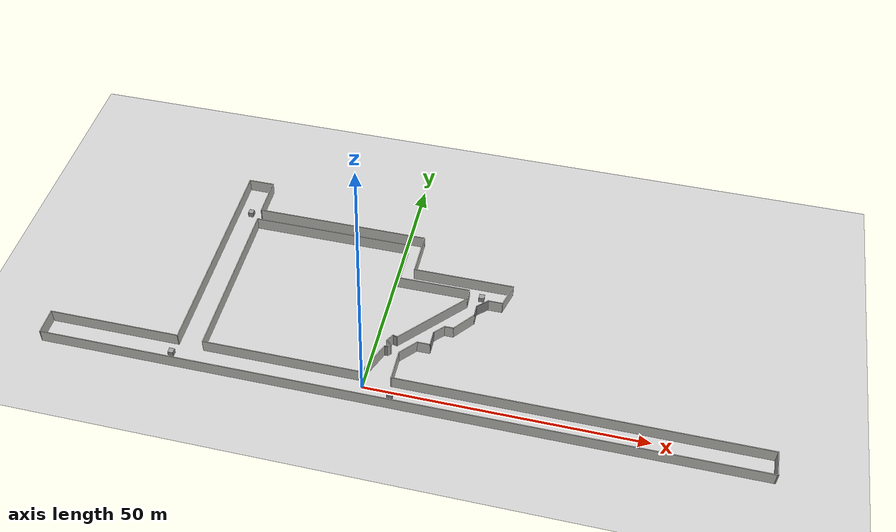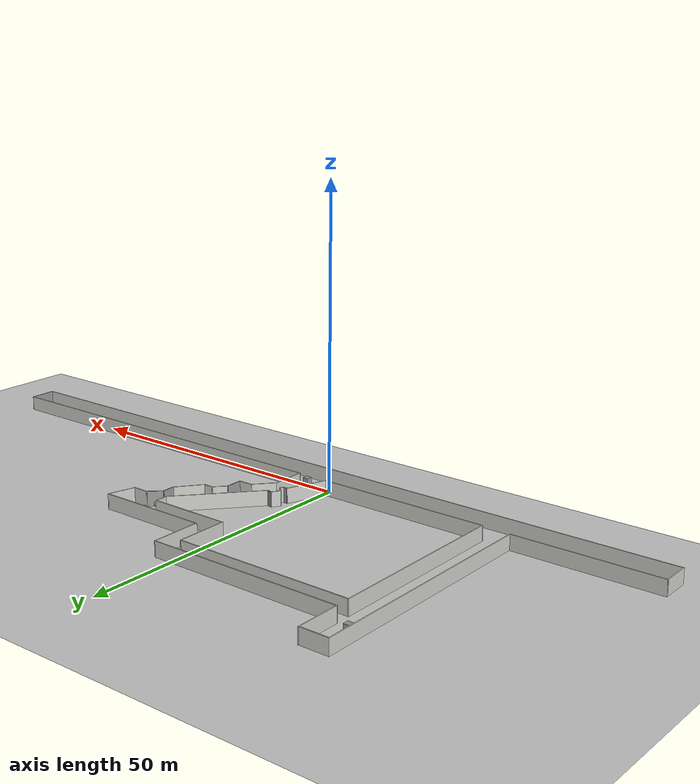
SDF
<sdf version="1.6">
 <world name="racecar_tunnel">
  <light name="sun" type="directional">
   <pose>0 0 10 0 -0 0</pose>
   <diffuse>0.8 0.8 0.8 1</diffuse>
   <specular>0.1 0.1 0.1 1</specular>
   <attenuation>
    <range>1000</range>
    <constant>0.9</constant>
    <linear>0.01</linear>
    <quadratic>0.001</quadratic>
   </attenuation>
   <direction>-0.5 0.5 -1</direction>
  </light>
  <model name="ground_plane">
   <static>1</static>
   <link name="link">
    <collision name="collision">
     <geometry><plane><normal>0 0 1</normal><size>150 150</size></plane></geometry>
     <surface><friction><ode><mu>100</mu><mu2>50</mu2></ode></friction></surface>
    </collision>
    <visual name="visual">
     <cast_shadows>0</cast_shadows>
     <geometry><plane><normal>0 0 1</normal><size>150 150</size></plane></geometry>
     <material>
      <script><uri>file://media/materials/scripts/gazebo.material</uri><name>Gazebo/Grey</name></script>
     </material>
    </visual>
   </link>
  </model>
  <model name="MIT_Tunnel">
   <pose>6 20 0 0 -0 0</pose>
   <link name="Wall_10">
    <collision name="Wall_10_Collision">
     <geometry><box><size>32.6917 0.15 2.5</size></box></geometry>
     <pose>0 0 1.25 0 -0 0</pose>
    </collision>
    <visual name="Wall_10_Visual">
     <pose>0 0 1.25 0 -0 0</pose>
     <geometry><box><size>32.6917 0.15 2.5</size></box></geometry>
     <material>
      <script><uri>file://media/materials/scripts/gazebo.material</uri><name>Gazebo/CeilingTiled</name></script>
      <ambient>1 1 1 1</ambient>
     </material>
    </visual>
    <pose>-19.1952 15.5558 0 0 0 -0.001042</pose>
   </link>
   <link name="Wall_12">
    <collision name="Wall_12_Collision">
     <geometry><box><size>8.5 0.15 2.5</size></box></geometry>
     <pose>0 0 1.25 0 -0 0</pose>
    </collision>
    <visual name="Wall_12_Visual">
     <pose>0 0 1.25 0 -0 0</pose>
     <geometry><box><size>8.5 0.15 2.5</size></box></geometry>
     <material>
      <script><uri>file://media/materials/scripts/gazebo.material</uri><name>Gazebo/CeilingTiled</name></script>
      <ambient>1 1 1 1</ambient>
     </material>
    </visual>
    <pose>-2.92483 11.3639 0 0 0 -1.5708</pose>
   </link>
   <link name="Wall_15">
    <collision name="Wall_15_Collision">
     <geometry><box><size>18.75 0.15 2.5</size></box></geometry>
     <pose>0 0 1.25 0 -0 0</pose>
    </collision>
    <visual name="Wall_15_Visual">
     <pose>0 0 1.25 0 -0 0</pose>
     <geometry><box><size>18.75 0.15 2.5</size></box></geometry>
     <material>
      <script><uri>file://media/materials/scripts/gazebo.material</uri><name>Gazebo/CeilingTiled</name></script>
      <ambient>1 1 1 1</ambient>
     </material>
    </visual>
    <pose>6.37517 7.18889 0 0 -0 0</pose>
   </link>
   <link name="Wall_17">
    <collision name="Wall_17_Collision">
     <geometry><box><size>4.75 0.15 2.5</size></box></geometry>
     <pose>0 0 1.25 0 -0 0</pose>
    </collision>
    <visual name="Wall_17_Visual">
     <pose>0 0 1.25 0 -0 0</pose>
     <geometry><box><size>4.75 0.15 2.5</size></box></geometry>
     <material>
      <script><uri>file://media/materials/scripts/gazebo.material</uri><name>Gazebo/CeilingTiled</name></script>
      <ambient>1 1 1 1</ambient>
     </material>
    </visual>
    <pose>15.0799 4.96726 0 0 0 -1.8326</pose>
   </link>
   <link name="Wall_18">
    <collision name="Wall_18_Collision">
     <geometry><box><size>2.75 0.15 2.5</size></box></geometry>
     <pose>0 0 1.25 0 -0 0</pose>
    </collision>
    <visual name="Wall_18_Visual">
     <pose>0 0 1.25 0 -0 0</pose>
     <geometry><box><size>2.75 0.15 2.5</size></box></geometry>
     <material>
      <script><uri>file://media/materials/scripts/gazebo.material</uri><name>Gazebo/CeilingTiled</name></script>
      <ambient>1 1 1 1</ambient>
     </material>
    </visual>
    <pose>13.1846 2.74563 0 0 -0 3.14159</pose>
   </link>
   <link name="Wall_19">
    <collision name="Wall_19_Collision">
     <geometry><box><size>2.75 0.15 2.5</size></box></geometry>
     <pose>0 0 1.25 0 -0 0</pose>
    </collision>
    <visual name="Wall_19_Visual">
     <pose>0 0 1.25 0 -0 0</pose>
     <geometry><box><size>2.75 0.15 2.5</size></box></geometry>
     <material>
      <script><uri>file://media/materials/scripts/gazebo.material</uri><name>Gazebo/Grey</name></script>
      <ambient>1 1 1 1</ambient>
     </material>
    </visual>
    <pose>10.9654 1.82639 0 0 0 -2.35619</pose>
   </link>
   <link name="Wall_2">
    <collision name="Wall_2_Collision">
     <geometry><box><size>24.25 0.15 2.5</size></box></geometry>
     <pose>0 0 1.25 0 -0 0</pose>
    </collision>
    <visual name="Wall_2_Visual">
     <pose>0 0 1.25 0 -0 0</pose>
     <geometry><box><size>24.25 0.15 2.5</size></box></geometry>
     <material>
      <script><uri>file://media/materials/scripts/gazebo.material</uri><name>Gazebo/CeilingTiled</name></script>
      <ambient>1 1 1 1</ambient>
     </material>
    </visual>
    <pose>-52.25 -18.2689 0 0 -0 0</pose>
   </link>
   <link name="Wall_20">
    <collision name="Wall_20_Collision">
     <geometry><box><size>2.25 0.15 2.5</size></box></geometry>
     <pose>0 0 1.25 0 -0 0</pose>
    </collision>
    <visual name="Wall_20_Visual">
     <pose>0 0 1.25 0 -0 0</pose>
     <geometry><box><size>2.25 0.15 2.5</size></box></geometry>
     <material>
      <script><uri>file://media/materials/scripts/gazebo.material</uri><name>Gazebo/Grey</name></script>
      <ambient>1 1 1 1</ambient>
     </material>
    </visual>
    <pose>10.0461 -0.142849 0 0 0 -1.5708</pose>
   </link>
   <link name="Wall_22">
    <collision name="Wall_22_Collision">
     <geometry><box><size>5.08891 0.15 2.5</size></box></geometry>
     <pose>0 0 1.25 0 -0 0</pose>
    </collision>
    <visual name="Wall_22_Visual">
     <pose>0 0 1.25 0 -0 0</pose>
     <geometry><box><size>5.08891 0.15 2.5</size></box></geometry>
     <material>
      <script><uri>file://media/materials/scripts/gazebo.material</uri><name>Gazebo/CeilingTiled</name></script>
      <ambient>1 1 1 1</ambient>
     </material>
    </visual>
    <pose>8.53852 -3.14869 0 0 0 -2.22749</pose>
   </link>
   <link name="Wall_23">
    <collision name="Wall_23_Collision">
     <geometry><box><size>1.75 0.15 2.5</size></box></geometry>
     <pose>0 0 1.25 0 -0 0</pose>
    </collision>
    <visual name="Wall_23_Visual">
     <pose>0 0 1.25 0 -0 0</pose>
     <geometry><box><size>1.75 0.15 2.5</size></box></geometry>
     <material>
      <script><uri>file://media/materials/scripts/gazebo.material</uri><name>Gazebo/CeilingTiled</name></script>
      <ambient>1 1 1 1</ambient>
     </material>
    </visual>
    <pose>6.23091 -5.10454 0 0 -0 3.14159</pose>
   </link>
   <link name="Wall_24">
    <collision name="Wall_24_Collision">
     <geometry><box><size>2.59216 0.15 2.5</size></box></geometry>
     <pose>0 0 1.25 0 -0 0</pose>
    </collision>
    <visual name="Wall_24_Visual">
     <pose>0 0 1.25 0 -0 0</pose>
     <geometry><box><size>2.59216 0.15 2.5</size></box></geometry>
     <material>
      <script><uri>file://media/materials/scripts/gazebo.material</uri><name>Gazebo/CeilingTiled</name></script>
      <ambient>1 1 1 1</ambient>
     </material>
    </visual>
    <pose>4.6163 -6.01417 0 0 0 -2.30114</pose>
   </link>
   <link name="Wall_26">
    <collision name="Wall_26_Collision">
     <geometry><box><size>3 0.15 2.5</size></box></geometry>
     <pose>0 0 1.25 0 -0 0</pose>
    </collision>
    <visual name="Wall_26_Visual">
     <pose>0 0 1.25 0 -0 0</pose>
     <geometry><box><size>3 0.15 2.5</size></box></geometry>
     <material>
      <script><uri>file://media/materials/scripts/gazebo.material</uri><name>Gazebo/Grey</name></script>
      <ambient>1 1 1 1</ambient>
     </material>
    </visual>
    <pose>3.80168 -8.34882 0 0 0 -1.5708</pose>
   </link>
   <link name="Wall_27">
    <collision name="Wall_27_Collision">
     <geometry><box><size>2.5 0.15 2.5</size></box></geometry>
     <pose>0 0 1.25 0 -0 0</pose>
    </collision>
    <visual name="Wall_27_Visual">
     <pose>0 0 1.25 0 -0 0</pose>
     <geometry><box><size>2.5 0.15 2.5</size></box></geometry>
     <material>
      <script><uri>file://media/materials/scripts/gazebo.material</uri><name>Gazebo/CeilingTiled</name></script>
      <ambient>1 1 1 1</ambient>
     </material>
    </visual>
    <pose>2.62668 -9.77382 0 0 -0 3.14159</pose>
   </link>
   <link name="Wall_28">
    <collision name="Wall_28_Collision">
     <geometry><box><size>4.15096 0.15 2.5</size></box></geometry>
     <pose>0 0 1.25 0 -0 0</pose>
    </collision>
    <visual name="Wall_28_Visual">
     <pose>0 0 1.25 0 -0 0</pose>
     <geometry><box><size>4.15096 0.15 2.5</size></box></geometry>
     <material>
      <script><uri>file://media/materials/scripts/gazebo.material</uri><name>Gazebo/CeilingTiled</name></script>
      <ambient>1 1 1 1</ambient>
     </material>
    </visual>
    <pose>0.152007 -11.2946 0 0 0 -2.27796</pose>
   </link>
   <link name="Wall_29">
    <collision name="Wall_29_Collision">
     <geometry><box><size>5.87777 0.15 2.5</size></box></geometry>
     <pose>0 0 1.25 0 -0 0</pose>
    </collision>
    <visual name="Wall_29_Visual">
     <pose>0 0 1.25 0 -0 0</pose>
     <geometry><box><size>5.87777 0.15 2.5</size></box></geometry>
     <material>
      <script><uri>file://media/materials/scripts/gazebo.material</uri><name>Gazebo/CeilingTiled</name></script>
      <ambient>1 1 1 1</ambient>
     </material>
    </visual>
    <pose>-1.14312 -15.679 0 0 0 -1.56921</pose>
   </link>
   <link name="Wall_30">
    <collision name="Wall_30_Collision">
     <geometry><box><size>65.5 0.15 2.5</size></box></geometry>
     <pose>0 0 1.25 0 -0 0</pose>
    </collision>
    <visual name="Wall_30_Visual">
     <pose>0 0 1.25 0 -0 0</pose>
     <geometry><box><size>65.5 0.15 2.5</size></box></geometry>
     <material>
      <script><uri>file://media/materials/scripts/gazebo.material</uri><name>Gazebo/CeilingTiled</name></script>
      <ambient>1 1 1 1</ambient>
     </material>
    </visual>
    <pose>31.5103 -18.5427 0 0 -0 0</pose>
   </link>
   <link name="Wall_32">
    <collision name="Wall_32_Collision">
     <geometry><box><size>4.75 0.15 2.5</size></box></geometry>
     <pose>0 0 1.25 0 -0 0</pose>
    </collision>
    <visual name="Wall_32_Visual">
     <pose>0 0 1.25 0 -0 0</pose>
     <geometry><box><size>4.75 0.15 2.5</size></box></geometry>
     <material>
      <script><uri>file://media/materials/scripts/gazebo.material</uri><name>Gazebo/Grey</name></script>
      <ambient>1 1 1 1</ambient>
     </material>
    </visual>
    <pose>64.1853 -20.8427 0 0 0 -1.5708</pose>
   </link>
   <link name="Wall_34">
    <collision name="Wall_34_Collision">
     <geometry><box><size>5 0.15 2.5</size></box></geometry>
     <pose>0 0 1.25 0 -0 0</pose>
    </collision>
    <visual name="Wall_34_Visual">
     <pose>0 0 1.25 0 -0 0</pose>
     <geometry><box><size>5 0.15 2.5</size></box></geometry>
     <material>
      <script><uri>file://media/materials/scripts/gazebo.material</uri><name>Gazebo/CeilingTiled</name></script>
      <ambient>1 1 1 1</ambient>
     </material>
    </visual>
    <pose>-64.3 -20.6939 0 0 0 -1.5708</pose>
   </link>
   <link name="Wall_35">
    <collision name="Wall_35_Collision">
     <geometry><box><size>128.75 0.15 2.5</size></box></geometry>
     <pose>0 0 1.25 0 -0 0</pose>
    </collision>
    <visual name="Wall_35_Visual">
     <pose>0 0 1.25 0 -0 0</pose>
     <geometry><box><size>128.75 0.15 2.5</size></box></geometry>
     <material>
      <script><uri>file://media/materials/scripts/gazebo.material</uri><name>Gazebo/CeilingTiled</name></script>
      <ambient>1 1 1 1</ambient>
     </material>
    </visual>
    <pose>1e-06 -23.1189 0 0 -0 0</pose>
   </link>
   <link name="Wall_37">
    <collision name="Wall_37_Collision">
     <geometry><box><size>4.75 0.15 2.5</size></box></geometry>
     <pose>0 0 1.25 0 -0 0</pose>
    </collision>
    <visual name="Wall_37_Visual">
     <pose>0 0 1.25 0 -0 0</pose>
     <geometry><box><size>4.75 0.15 2.5</size></box></geometry>
     <material>
      <script><uri>file://media/materials/scripts/gazebo.material</uri><name>Gazebo/CeilingTiled</name></script>
      <ambient>1 1 1 1</ambient>
     </material>
    </visual>
    <pose>-37.9 23.0811 0 0 -0 0</pose>
   </link>
   <link name="Wall_41">
    <collision name="Wall_41_Collision">
     <geometry><box><size>31.75 0.15 2.5</size></box></geometry>
     <pose>0 0 1.25 0 -0 0</pose>
    </collision>
    <visual name="Wall_41_Visual">
     <pose>0 0 1.25 0 -0 0</pose>
     <geometry><box><size>31.75 0.15 2.5</size></box></geometry>
     <material>
      <script><uri>file://media/materials/scripts/gazebo.material</uri><name>Gazebo/CeilingTiled</name></script>
      <ambient>1 1 1 1</ambient>
     </material>
    </visual>
    <pose>-35.4175 -2.72616 0 0 -0 1.5708</pose>
   </link>
   <link name="Wall_43">
    <collision name="Wall_43_Collision">
     <geometry><box><size>30 0.15 2.5</size></box></geometry>
     <pose>0 0 1.25 0 -0 0</pose>
    </collision>
    <visual name="Wall_43_Visual">
     <pose>0 0 1.25 0 -0 0</pose>
     <geometry><box><size>30 0.15 2.5</size></box></geometry>
     <material>
      <script><uri>file://media/materials/scripts/gazebo.material</uri><name>Gazebo/CeilingTiled</name></script>
      <ambient>1 1 1 1</ambient>
     </material>
    </visual>
    <pose>-20.4925 13.0738 0 0 -0 0</pose>
   </link>
   <link name="Wall_44">
    <collision name="Wall_44_Collision">
     <geometry><box><size>8.75 0.15 2.5</size></box></geometry>
     <pose>0 0 1.25 0 -0 0</pose>
    </collision>
    <visual name="Wall_44_Visual">
     <pose>0 0 1.25 0 -0 0</pose>
     <geometry><box><size>8.75 0.15 2.5</size></box></geometry>
     <material>
      <script><uri>file://media/materials/scripts/gazebo.material</uri><name>Gazebo/CeilingTiled</name></script>
      <ambient>1 1 1 1</ambient>
     </material>
    </visual>
    <pose>-5.56745 8.77384 0 0 0 -1.5708</pose>
   </link>
   <link name="Wall_45">
    <collision name="Wall_45_Collision">
     <geometry><box><size>13.75 0.15 2.5</size></box></geometry>
     <pose>0 0 1.25 0 -0 0</pose>
    </collision>
    <visual name="Wall_45_Visual">
     <pose>0 0 1.25 0 -0 0</pose>
     <geometry><box><size>13.75 0.15 2.5</size></box></geometry>
     <material>
      <script><uri>file://media/materials/scripts/gazebo.material</uri><name>Gazebo/CeilingTiled</name></script>
      <ambient>1 1 1 1</ambient>
     </material>
    </visual>
    <pose>1.23255 4.47384 0 0 -0 0</pose>
   </link>
   <link name="Wall_46">
    <collision name="Wall_46_Collision">
     <geometry><box><size>2.25 0.15 2.5</size></box></geometry>
     <pose>0 0 1.25 0 -0 0</pose>
    </collision>
    <visual name="Wall_46_Visual">
     <pose>0 0 1.25 0 -0 0</pose>
     <geometry><box><size>2.25 0.15 2.5</size></box></geometry>
     <material>
      <script><uri>file://media/materials/scripts/gazebo.material</uri><name>Gazebo/CeilingTiled</name></script>
      <ambient>1 1 1 1</ambient>
     </material>
    </visual>
    <pose>8.03255 3.42384 0 0 0 -1.5708</pose>
   </link>
   <link name="Wall_47">
    <collision name="Wall_47_Collision">
     <geometry><box><size>15.8243 0.15 2.5</size></box></geometry>
     <pose>0 0 1.25 0 -0 0</pose>
    </collision>
    <visual name="Wall_47_Visual">
     <pose>0 0 1.25 0 -0 0</pose>
     <geometry><box><size>15.8243 0.15 2.5</size></box></geometry>
     <material>
      <script><uri>file://media/materials/scripts/gazebo.material</uri><name>Gazebo/CeilingTiled</name></script>
      <ambient>1 1 1 1</ambient>
     </material>
    </visual>
    <pose>2.89068 -3.54071 0 0 0 -2.28642</pose>
   </link>
   <link name="Wall_5">
    <collision name="Wall_5_Collision">
     <geometry><box><size>41.5 0.15 2.5</size></box></geometry>
     <pose>0 0 1.25 0 -0 0</pose>
    </collision>
    <visual name="Wall_5_Visual">
     <pose>0 0 1.25 0 -0 0</pose>
     <geometry><box><size>41.5 0.15 2.5</size></box></geometry>
     <material>
      <script><uri>file://media/materials/scripts/gazebo.material</uri><name>Gazebo/CeilingTiled</name></script>
      <ambient>1 1 1 1</ambient>
     </material>
    </visual>
    <pose>-40.2 2.40609 0 0 -0 1.5708</pose>
   </link>
   <link name="Wall_50">
    <collision name="Wall_50_Collision">
     <geometry><box><size>1 0.15 2.5</size></box></geometry>
     <pose>0 0 1.25 0 -0 0</pose>
    </collision>
    <visual name="Wall_50_Visual">
     <pose>0 0 1.25 0 -0 0</pose>
     <geometry><box><size>1 0.15 2.5</size></box></geometry>
     <material>
      <script><uri>file://media/materials/scripts/gazebo.material</uri><name>Gazebo/Grey</name></script>
      <ambient>1 1 1 1</ambient>
     </material>
    </visual>
    <pose>-2.6617 -9.34526 0 0 -0 2.87979</pose>
   </link>
   <link name="Wall_51">
    <collision name="Wall_51_Collision">
     <geometry><box><size>1.75 0.15 2.5</size></box></geometry>
     <pose>0 0 1.25 0 -0 0</pose>
    </collision>
    <visual name="Wall_51_Visual">
     <pose>0 0 1.25 0 -0 0</pose>
     <geometry><box><size>1.75 0.15 2.5</size></box></geometry>
     <material>
      <script><uri>file://media/materials/scripts/gazebo.material</uri><name>Gazebo/CeilingTiled</name></script>
      <ambient>1 1 1 1</ambient>
     </material>
    </visual>
    <pose>-3.47221 -9.92808 0 0 0 -2.0944</pose>
   </link>
   <link name="Wall_52">
    <collision name="Wall_52_Collision">
     <geometry><box><size>1.5 0.15 2.5</size></box></geometry>
     <pose>0 0 1.25 0 -0 0</pose>
    </collision>
    <visual name="Wall_52_Visual">
     <pose>0 0 1.25 0 -0 0</pose>
     <geometry><box><size>1.5 0.15 2.5</size></box></geometry>
     <material>
      <script><uri>file://media/materials/scripts/gazebo.material</uri><name>Gazebo/CeilingTiled</name></script>
      <ambient>1 1 1 1</ambient>
     </material>
    </visual>
    <pose>-3.39492 -11.0982 0 0 0 -0.785398</pose>
   </link>
   <link name="Wall_53">
    <collision name="Wall_53_Collision">
     <geometry><box><size>0.75 0.15 2.5</size></box></geometry>
     <pose>0 0 1.25 0 -0 0</pose>
    </collision>
    <visual name="Wall_53_Visual">
     <pose>0 0 1.25 0 -0 0</pose>
     <geometry><box><size>0.75 0.15 2.5</size></box></geometry>
     <material>
      <script><uri>file://media/materials/scripts/gazebo.material</uri><name>Gazebo/CeilingTiled</name></script>
      <ambient>1 1 1 1</ambient>
     </material>
    </visual>
    <pose>-3.12975 -11.7876 0 0 0 -2.35619</pose>
   </link>
   <link name="Wall_54">
    <collision name="Wall_54_Collision">
     <geometry><box><size>0.75 0.15 2.5</size></box></geometry>
     <pose>0 0 1.25 0 -0 0</pose>
    </collision>
    <visual name="Wall_54_Visual">
     <pose>0 0 1.25 0 -0 0</pose>
     <geometry><box><size>0.75 0.15 2.5</size></box></geometry>
     <material>
      <script><uri>file://media/materials/scripts/gazebo.material</uri><name>Gazebo/Grey</name></script>
      <ambient>1 1 1 1</ambient>
     </material>
    </visual>
    <pose>-3.64188 -11.9998 0 0 -0 3.14159</pose>
   </link>
   <link name="Wall_55">
    <collision name="Wall_55_Collision">
     <geometry><box><size>7.13355 0.15 2.5</size></box></geometry>
     <pose>0 0 1.25 0 -0 0</pose>
    </collision>
    <visual name="Wall_55_Visual">
     <pose>0 0 1.25 0 -0 0</pose>
     <geometry><box><size>7.13355 0.15 2.5</size></box></geometry>
     <material>
      <script><uri>file://media/materials/scripts/gazebo.material</uri><name>Gazebo/CeilingTiled</name></script>
      <ambient>1 1 1 1</ambient>
     </material>
    </visual>
    <pose>-5.21192 -15.2524 0 0 0 -1.94306</pose>
   </link>
   <link name="Wall_57">
    <collision name="Wall_57_Collision">
     <geometry><box><size>29 0.15 2.5</size></box></geometry>
     <pose>0 0 1.25 0 -0 0</pose>
    </collision>
    <visual name="Wall_57_Visual">
     <pose>0 0 1.25 0 -0 0</pose>
     <geometry><box><size>29 0.15 2.5</size></box></geometry>
     <material>
      <script><uri>file://media/materials/scripts/gazebo.material</uri><name>Gazebo/CeilingTiled</name></script>
      <ambient>1 1 1 1</ambient>
     </material>
    </visual>
    <pose>-20.9925 -18.5262 0 0 -0 0</pose>
   </link>
   <link name="Wall_9">
    <collision name="Wall_9_Collision">
     <geometry><box><size>7.75 0.15 2.5</size></box></geometry>
     <pose>0 0 1.25 0 -0 0</pose>
    </collision>
    <visual name="Wall_9_Visual">
     <pose>0 0 1.25 0 -0 0</pose>
     <geometry><box><size>7.75 0.15 2.5</size></box></geometry>
     <material>
      <script><uri>file://media/materials/scripts/gazebo.material</uri><name>Gazebo/CeilingTiled</name></script>
      <ambient>1 1 1 1</ambient>
     </material>
    </visual>
    <pose>-35.4657 19.3427 0 0 0 -1.5708</pose>
   </link>
   <static>1</static>
  </model>
  <gravity>0 0 -9.8</gravity>
  <magnetic_field>6e-06 2.3e-05 -4.2e-05</magnetic_field>
  <atmosphere type="adiabatic"/>
  <physics name="default_physics" default="0" type="ode">
   <max_step_size>0.001</max_step_size>
   <real_time_factor>1</real_time_factor>
   <real_time_update_rate>1000</real_time_update_rate>
  </physics>
  <scene><ambient>0.4 0.4 0.4 1</ambient><background>0.7 0.7 0.7 1</background><shadows>1</shadows></scene>
  <spherical_coordinates>
   <surface_model>EARTH_WGS84</surface_model>
   <latitude_deg>0</latitude_deg>
   <longitude_deg>0</longitude_deg>
   <elevation>0</elevation>
   <heading_deg>0</heading_deg>
  </spherical_coordinates>
  <model name="unit_box_0">
   <pose>5.22428 -0.81784 0.499056 0.000449 -0 -0.000604</pose>
   <link name="link">
    <inertial>
     <mass>1</mass>
     <inertia>
      <ixx>0.166667</ixx>
      <ixy>0</ixy>
      <ixz>0</ixz>
      <iyy>0.166667</iyy>
      <iyz>0</iyz>
      <izz>0.166667</izz>
     </inertia>
    </inertial>
    <collision name="collision"><geometry><box><size>1 1 1</size></box></geometry></collision>
    <visual name="visual">
     <geometry><box><size>1 1 1</size></box></geometry>
     <material>
      <script><name>Gazebo/Grey</name><uri>file://media/materials/scripts/gazebo.material</uri></script>
     </material>
    </visual>
   </link>
  </model>
  <model name="unit_box_1">
   <pose>16.3431 24.8184 0.49904 0.000455 -0 -0.000491</pose>
   <link name="link">
    <inertial>
     <mass>1</mass>
     <inertia>
      <ixx>0.166667</ixx>
      <ixy>0</ixy>
      <ixz>0</ixz>
      <iyy>0.166667</iyy>
      <iyz>0</iyz>
      <izz>0.166667</izz>
     </inertia>
    </inertial>
    <collision name="collision"><geometry><box><size>1 1 1</size></box></geometry></collision>
    <visual name="visual">
     <geometry><box><size>1 1 1</size></box></geometry>
     <material>
      <script><name>Gazebo/Grey</name><uri>file://media/materials/scripts/gazebo.material</uri></script>
     </material>
    </visual>
   </link>
  </model>
  <model name="unit_box_2">
   <pose>-31.8044 36.128 0.498906 0 -0.000505 -4e-06</pose>
   <link name="link">
    <inertial>
     <mass>1</mass>
     <inertia>
      <ixx>0.166667</ixx>
      <ixy>0</ixy>
      <ixz>0</ixz>
      <iyy>0.166667</iyy>
      <iyz>0</iyz>
      <izz>0.166667</izz>
     </inertia>
    </inertial>
    <collision name="collision"><geometry><box><size>1 1 1</size></box></geometry></collision>
    <visual name="visual">
     <geometry><box><size>1 1 1</size></box></geometry>
     <material>
      <script><name>Gazebo/Grey</name><uri>file://media/materials/scripts/gazebo.material</uri></script>
     </material>
    </visual>
   </link>
  </model>
  <model name="unit_box_3">
   <pose>-34.6922 -0.669846 0.498599 -0.000613 -0 4e-06</pose>
   <link name="link">
    <inertial>
     <mass>1</mass>
     <inertia>
      <ixx>0.166667</ixx>
      <ixy>0</ixy>
      <ixz>0</ixz>
      <iyy>0.166667</iyy>
      <iyz>0</iyz>
      <izz>0.166667</izz>
     </inertia>
    </inertial>
    <collision name="collision"><geometry><box><size>1 0.999998 1</size></box></geometry></collision>
    <visual name="visual">
     <geometry><box><size>1 0.999998 1</size></box></geometry>
     <material>
      <script><name>Gazebo/Grey</name><uri>file://media/materials/scripts/gazebo.material</uri></script>
     </material>
    </visual>
   </link>
  </model>
  <model name="unit_sphere_0">
   <pose>16.2637 22.1173 0.592756 0.030571 -0.008723 0.037045</pose>
   <link name="link">
    <inertial>
     <mass>1</mass>
     <inertia><ixx>0.1</ixx><ixy>0</ixy><ixz>0</ixz><iyy>0.1</iyy><iyz>0</iyz><izz>0.1</izz></inertia>
    </inertial>
    <collision name="collision"><geometry><sphere><radius>0.500002</radius></sphere></geometry></collision>
    <visual name="visual">
     <geometry><sphere><radius>0.500002</radius></sphere></geometry>
     <material>
      <script><name>Gazebo/Grey</name><uri>file://media/materials/scripts/gazebo.material</uri></script>
     </material>
    </visual>
   </link>
  </model>
 </world>
</sdf>
